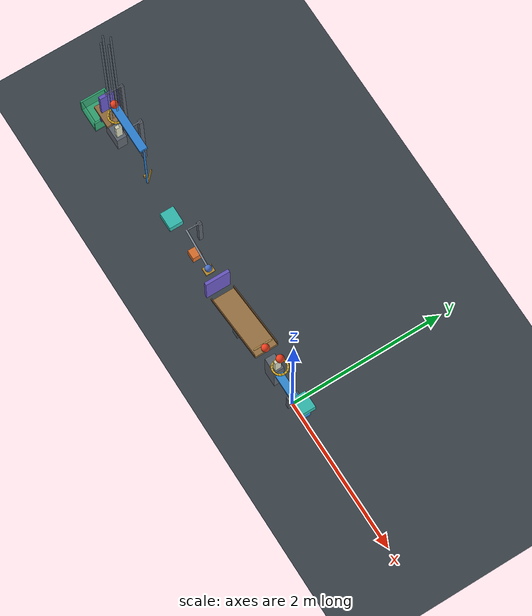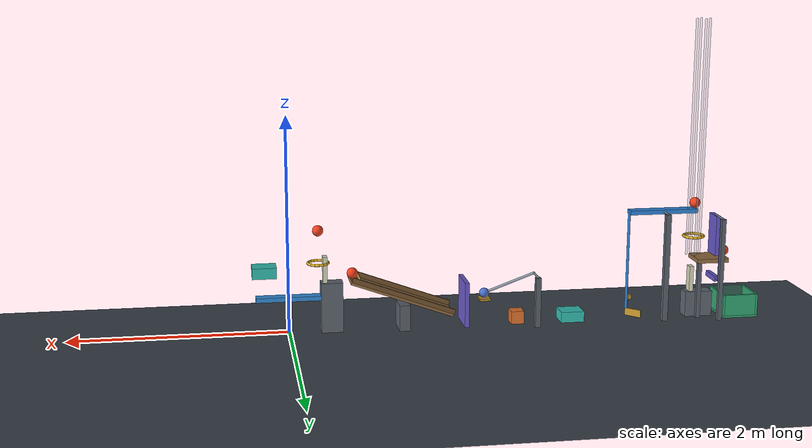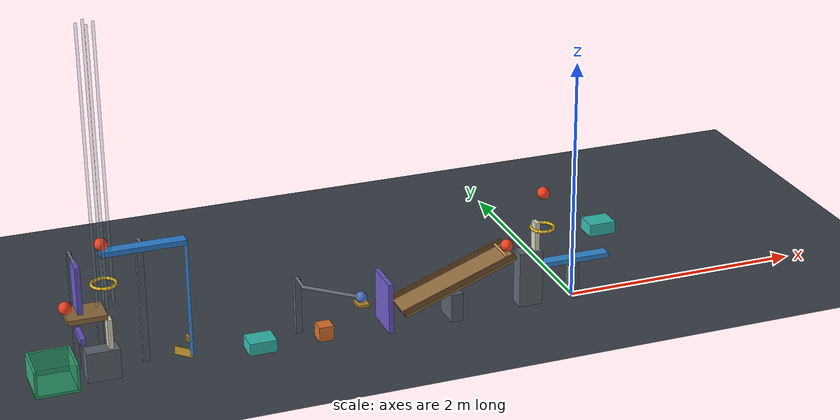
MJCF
<mujoco model="passive_chain_reaction">
  <compiler angle="degree" autolimits="true" inertiafromgeom="true"/>
  <option timestep="0.002" gravity="0 0 -9.81" integrator="implicitfast" solver="Newton" iterations="100" cone="elliptic"/>
  <size njmax="3000" nconmax="1000"/>
  <statistic center="-2 0 0.8" extent="5"/>
  <visual>
    <headlight ambient="0.35 0.35 0.35" diffuse="0.65 0.65 0.65" specular="0.2 0.2 0.2"/>
  </visual>

  <!-- Positive-format solref approximates e=0.04 with damping ratio 0.716.
       All initial generalized velocities are zero.
       Auxiliary fixtures supply passive releases and stored spring energy. -->

  <worldbody>
    <light name="main_light" pos="-2 -3 5" dir="0 0.5 -1" diffuse="0.8 0.8 0.8"/>
    <camera name="overview" pos="-2 -6 3.4" xyaxes="1 0 0 0 0.40 0.916515"/>
    <geom name="floor" type="plane" size="10 5 0.1" friction="0.72 0.005 0.0001" solref="0.006 0.716" solimp="0.95 0.99 0.001" rgba="0.23 0.26 0.29 1"/>
    <site name="block1_spring_anchor" pos="-8 0 0.060001" size="0.003" rgba="0 0 0 0"/>

    <!-- Ball1: center-to-ring drop 0.30 m; ring-to-impact-center drop 0.25 m. -->
    <body name="ball1" pos="-0.27 0 0.945">
      <freejoint name="ball1_free"/>
      <geom name="ball1_geom" type="sphere" size="0.05" mass="0.20" friction="0.72 0.005 0.0001" solref="0.006 0.716" solimp="0.95 0.99 0.001" rgba="0.95 0.25 0.12 1"/>
    </body>

    <!-- Sixteen capsules give a nominal 0.16 m minimum clear diameter. -->
    <body name="ring1" pos="-0.27 0 0.645">
      <geom name="ring1_01" type="capsule" fromto="0.0938032 0 0 0.0866659 0.0358977 0" size="0.012" friction="0.72 0.005 0.0001" solref="0.006 0.716" rgba="0.9 0.72 0.15 1"/>
      <geom name="ring1_02" type="capsule" fromto="0.0866659 0.0358977 0 0.066329 0.066329 0" size="0.012" friction="0.72 0.005 0.0001" solref="0.006 0.716" rgba="0.9 0.72 0.15 1"/>
      <geom name="ring1_03" type="capsule" fromto="0.066329 0.066329 0 0.0358977 0.0866659 0" size="0.012" friction="0.72 0.005 0.0001" solref="0.006 0.716" rgba="0.9 0.72 0.15 1"/>
      <geom name="ring1_04" type="capsule" fromto="0.0358977 0.0866659 0 0 0.0938032 0" size="0.012" friction="0.72 0.005 0.0001" solref="0.006 0.716" rgba="0.9 0.72 0.15 1"/>
      <geom name="ring1_05" type="capsule" fromto="0 0.0938032 0 -0.0358977 0.0866659 0" size="0.012" friction="0.72 0.005 0.0001" solref="0.006 0.716" rgba="0.9 0.72 0.15 1"/>
      <geom name="ring1_06" type="capsule" fromto="-0.0358977 0.0866659 0 -0.066329 0.066329 0" size="0.012" friction="0.72 0.005 0.0001" solref="0.006 0.716" rgba="0.9 0.72 0.15 1"/>
      <geom name="ring1_07" type="capsule" fromto="-0.066329 0.066329 0 -0.0866659 0.0358977 0" size="0.012" friction="0.72 0.005 0.0001" solref="0.006 0.716" rgba="0.9 0.72 0.15 1"/>
      <geom name="ring1_08" type="capsule" fromto="-0.0866659 0.0358977 0 -0.0938032 0 0" size="0.012" friction="0.72 0.005 0.0001" solref="0.006 0.716" rgba="0.9 0.72 0.15 1"/>
      <geom name="ring1_09" type="capsule" fromto="-0.0938032 0 0 -0.0866659 -0.0358977 0" size="0.012" friction="0.72 0.005 0.0001" solref="0.006 0.716" rgba="0.9 0.72 0.15 1"/>
      <geom name="ring1_10" type="capsule" fromto="-0.0866659 -0.0358977 0 -0.066329 -0.066329 0" size="0.012" friction="0.72 0.005 0.0001" solref="0.006 0.716" rgba="0.9 0.72 0.15 1"/>
      <geom name="ring1_11" type="capsule" fromto="-0.066329 -0.066329 0 -0.0358977 -0.0866659 0" size="0.012" friction="0.72 0.005 0.0001" solref="0.006 0.716" rgba="0.9 0.72 0.15 1"/>
      <geom name="ring1_12" type="capsule" fromto="-0.0358977 -0.0866659 0 0 -0.0938032 0" size="0.012" friction="0.72 0.005 0.0001" solref="0.006 0.716" rgba="0.9 0.72 0.15 1"/>
      <geom name="ring1_13" type="capsule" fromto="0 -0.0938032 0 0.0358977 -0.0866659 0" size="0.012" friction="0.72 0.005 0.0001" solref="0.006 0.716" rgba="0.9 0.72 0.15 1"/>
      <geom name="ring1_14" type="capsule" fromto="0.0358977 -0.0866659 0 0.066329 -0.066329 0" size="0.012" friction="0.72 0.005 0.0001" solref="0.006 0.716" rgba="0.9 0.72 0.15 1"/>
      <geom name="ring1_15" type="capsule" fromto="0.066329 -0.066329 0 0.0866659 -0.0358977 0" size="0.012" friction="0.72 0.005 0.0001" solref="0.006 0.716" rgba="0.9 0.72 0.15 1"/>
      <geom name="ring1_16" type="capsule" fromto="0.0866659 -0.0358977 0 0.0938032 0 0" size="0.012" friction="0.72 0.005 0.0001" solref="0.006 0.716" rgba="0.9 0.72 0.15 1"/>
    </body>

    <body name="lever1" pos="0 0 0.325">
      <joint name="lever1_hinge" type="hinge" axis="0 -1 0" range="0 45" damping="0.04" solreflimit="0.004 1" solimplimit="0.99 0.999 0.001"/>
      <geom name="lever1_beam" type="box" size="0.30 0.05 0.02" mass="0.50" friction="0.72 0.005 0.0001" solref="0.006 0.716" solimp="0.95 0.99 0.001" rgba="0.2 0.55 0.85 1"/>
    </body>

    <body name="lever1_mount" pos="0 0 0.1525">
      <geom name="lever1_mount_post" type="box" size="0.025 0.075 0.1525" friction="0.72 0.005 0.0001" solref="0.006 0.716" rgba="0.35 0.38 0.42 1"/>
    </body>

    <!-- The rising lever face drives cart1 along -x.
         Its first domino contact occurs at slide displacement 0.42 m. -->
    <body name="cart1" pos="0.22 0 0.585">
      <joint name="cart1_slide" type="slide" axis="-1 0 0" range="0 0.60" damping="0.20" solreflimit="0.004 1" solimplimit="0.99 0.999 0.001"/>
      <geom name="cart1_geom" type="box" size="0.11 0.09 0.05" mass="0.50" friction="0.72 0.005 0.0001" solref="0.006 0.716" solimp="0.95 0.99 0.001" rgba="0.2 0.75 0.7 1"/>
    </body>

    <body name="domino1" pos="-0.33 0 0.585">
      <freejoint name="domino1_free"/>
      <geom name="domino1_geom" type="box" size="0.02 0.04 0.12" mass="0.25" friction="0.72 0.005 0.0001" solref="0.006 0.716" solimp="0.95 0.99 0.001" rgba="0.85 0.85 0.74 1"/>
    </body>

    <body name="domino1_support" pos="-0.39 0 0.2325">
      <geom name="domino1_support_geom" type="box" size="0.10 0.065 0.2325" friction="0.72 0.005 0.0001" solref="0.006 0.716" rgba="0.37 0.40 0.44 1"/>
    </body>

    <body name="ball2" pos="-0.58 0 0.53795">
      <freejoint name="ball2_free"/>
      <geom name="ball2_geom" type="sphere" size="0.05" mass="0.20" friction="0.72 0.005 0.0001" solref="0.006 0.716" solimp="0.95 0.99 0.001" rgba="0.95 0.25 0.12 1"/>
    </body>

    <!-- Ramp top endpoints: (-0.56,0,0.492020) and
         (-1.499693,0,0.15). The transverse lip retains ball2 until struck. -->
    <body name="ramp1" pos="-1.025571 0 0.309264" quat="0.984807753 0 -0.173648178 0">
      <geom name="ramp1_surface" type="box" size="0.50 0.15 0.0125" friction="0.72 0.005 0.0001" solref="0.006 0.716" solimp="0.95 0.99 0.001" rgba="0.58 0.43 0.25 1"/>
      <geom name="ramp1_side_positive" type="box" pos="0 0.15 0.035" size="0.50 0.006 0.0225" friction="0.72 0.005 0.0001" solref="0.006 0.716" rgba="0.45 0.32 0.18 1"/>
      <geom name="ramp1_side_negative" type="box" pos="0 -0.15 0.035" size="0.50 0.006 0.0225" friction="0.72 0.005 0.0001" solref="0.006 0.716" rgba="0.45 0.32 0.18 1"/>
      <geom name="ramp1_retaining_lip" type="capsule" fromto="0.43498 -0.11 0.05217 0.43498 0.11 0.05217" size="0.011" friction="0.72 0.005 0.0001" solref="0.006 0.716" rgba="0.75 0.58 0.31 1"/>
    </body>

    <body name="ramp1_support" pos="-1.05 0 0.12">
      <geom name="ramp1_support_geom" type="box" size="0.05 0.12 0.12" friction="0.72 0.005 0.0001" solref="0.006 0.716" rgba="0.35 0.38 0.42 1"/>
    </body>

    <!-- Door face is 0.10 m beyond the low ramp edge. -->
    <body name="door1" pos="-1.619693 0 0.02">
      <joint name="door1_hinge" type="hinge" axis="0 -1 0" range="0 70" damping="0.04" solreflimit="0.004 1" solimplimit="0.99 0.999 0.001"/>
      <geom name="door1_panel" type="box" pos="0 0 0.21" size="0.02 0.16 0.21" mass="0.45" friction="0.72 0.005 0.0001" solref="0.006 0.716" solimp="0.95 0.99 0.001" rgba="0.42 0.35 0.78 1"/>
    </body>

    <!-- This retractable support holds the inclined pendulum at rest.
         The falling door pushes it out and then contacts the pendulum. -->
    <body name="pendulum1_catch" pos="-1.810154 0 0.243990">
      <joint name="pendulum1_catch_slide" type="slide" axis="-1 0 0" range="0 0.14" damping="0.20" solreflimit="0.004 1" solimplimit="0.99 0.999 0.001"/>
      <geom name="pendulum1_catch_geom" type="box" size="0.05 0.06 0.01" mass="0.025" friction="0.72 0.005 0.0001" solref="0.006 0.716" solimp="0.95 0.99 0.001" rgba="0.72 0.55 0.18 1"/>
    </body>

    <body name="pendulum1" pos="-2.28 0 0.47">
      <joint name="pendulum1_hinge" type="hinge" axis="0 1 0" range="0 38" damping="0.04" stiffness="1.5" springref="38" solreflimit="0.004 1" solimplimit="0.99 0.999 0.001"/>
      <geom name="pendulum1_rod" type="capsule" fromto="0 0 0 0.437 0 -0.159058" size="0.012" mass="0.035" friction="0.72 0.005 0.0001" solref="0.006 0.716" rgba="0.6 0.64 0.7 1"/>
      <geom name="pendulum1_bob" type="sphere" pos="0.469846 0 -0.171010" size="0.045" mass="0.315" friction="0.72 0.005 0.0001" solref="0.006 0.716" solimp="0.95 0.99 0.001" rgba="0.3 0.45 0.8 1"/>
    </body>

    <body name="pendulum1_mount" pos="-2.28 0.17 0.235">
      <geom name="pendulum1_mount_post" type="box" size="0.025 0.025 0.235" friction="0.72 0.005 0.0001" solref="0.006 0.716" rgba="0.35 0.38 0.42 1"/>
      <geom name="pendulum1_mount_axle" type="capsule" fromto="0 -0.17 0.235 0 0 0.235" size="0.009" friction="0.72 0.005 0.0001" solref="0.006 0.716" rgba="0.5 0.53 0.58 1"/>
    </body>

    <!-- A weak horizontal spring biases block1 below its static-friction
         threshold. It does not start the block without the pendulum impact. -->
    <body name="block1" pos="-2.120040 0 0.060001">
      <freejoint name="block1_free"/>
      <geom name="block1_geom" type="box" size="0.06 0.06 0.06" mass="0.35" friction="0.72 0.005 0.0001" solref="0.006 0.716" solimp="0.95 0.99 0.001" rgba="0.88 0.45 0.18 1"/>
      <site name="block1_spring_attachment" pos="0 0 0" size="0.003" rgba="0 0 0 0"/>
    </body>

    <!-- Initial face separation from block1 is 0.35 m. -->
    <body name="cart2" pos="-2.640040 0 0.0505">
      <joint name="cart2_slide" type="slide" axis="-1 0 0" range="0 0.65" damping="0.20" solreflimit="0.004 1" solimplimit="0.99 0.999 0.001"/>
      <geom name="cart2_geom" type="box" size="0.11 0.09 0.05" mass="0.50" friction="0.72 0.005 0.0001" solref="0.006 0.716" solimp="0.95 0.99 0.001" rgba="0.2 0.75 0.7 1"/>
    </body>

    <!-- The elevated seesaw has a lightweight left-end striking extension.
         Cart2 reaches that extension after 0.42 m of slide travel. -->
    <body name="seesaw1" pos="-3.507040 0 1.02">
      <joint name="seesaw1_hinge" type="hinge" axis="0 1 0" range="0 42" damping="0.04" stiffness="3.0" springref="42" solreflimit="0.004 1" solimplimit="0.99 0.999 0.001"/>
      <geom name="seesaw1_beam" type="box" size="0.325 0.05 0.02" mass="0.55" friction="0.72 0.005 0.0001" solref="0.006 0.716" solimp="0.95 0.99 0.001" rgba="0.18 0.52 0.85 1"/>
      <geom name="seesaw1_left_end_extension" type="capsule" fromto="0.325 0 -0.01 0.325 0 -0.965" size="0.012" mass="0" friction="0.72 0.005 0.0001" solref="0.006 0.716" solimp="0.95 0.99 0.001" rgba="0.18 0.52 0.85 1"/>
    </body>

    <!-- Transverse latch: seesaw preload cannot withdraw it along y.
         Cart2 presses the diagonal cam to release the spring-loaded beam. -->
    <body name="seesaw1_latch" pos="-3.208040 0 0.20">
      <joint name="seesaw1_latch_slide" type="slide" axis="0 -1 0" range="0 0.12" damping="0.20" stiffness="0.5" springref="0" solreflimit="0.004 1" solimplimit="0.99 0.999 0.001"/>
      <geom name="seesaw1_latch_block" type="box" size="0.012 0.025 0.022" mass="0.015" friction="0.72 0.005 0.0001" solref="0.006 0.716" solimp="0.95 0.99 0.001" rgba="0.76 0.57 0.16 1"/>
      <geom name="seesaw1_latch_cam" type="box" pos="-0.023 0.06 -0.14" quat="0.923879533 0 0 0.382683432" size="0.005 0.08 0.035" mass="0.010" friction="0.72 0.005 0.0001" solref="0.006 0.716" solimp="0.95 0.99 0.001" rgba="0.76 0.57 0.16 1"/>
    </body>

    <body name="seesaw1_mount" pos="-3.507040 0.15 0.51">
      <geom name="seesaw1_mount_post" type="box" size="0.025 0.025 0.51" friction="0.72 0.005 0.0001" solref="0.006 0.716" rgba="0.35 0.38 0.42 1"/>
      <geom name="seesaw1_mount_axle" type="capsule" fromto="0 -0.15 0.51 0 0 0.51" size="0.009" friction="0.72 0.005 0.0001" solref="0.006 0.716" rgba="0.5 0.53 0.58 1"/>
    </body>

    <body name="ball3" pos="-3.817040 0 1.09">
      <freejoint name="ball3_free"/>
      <geom name="ball3_geom" type="sphere" size="0.05" mass="0.20" contype="5" conaffinity="3" friction="0.72 0.005 0.0001" solref="0.006 0.716" solimp="0.95 0.99 0.001" rgba="0.95 0.25 0.12 1"/>
    </body>

    <!-- Ball-only contact filtering represents a slotted vertical launch
         guide: the lever can sweep through it, while ball3 stays aligned. -->
    <body name="ball3_guide" pos="-3.817040 0 0">
      <geom name="ball3_guide_positive_x" type="capsule" fromto="0.062 0 0.60 0.062 0 2.80" size="0.011" contype="2" conaffinity="4" friction="0.72 0.005 0.0001" solref="0.006 0.716" rgba="0.55 0.65 0.72 0.3"/>
      <geom name="ball3_guide_negative_x" type="capsule" fromto="-0.062 0 0.60 -0.062 0 2.80" size="0.011" contype="2" conaffinity="4" friction="0.72 0.005 0.0001" solref="0.006 0.716" rgba="0.55 0.65 0.72 0.3"/>
      <geom name="ball3_guide_positive_y" type="capsule" fromto="0 0.062 0.60 0 0.062 2.80" size="0.011" contype="2" conaffinity="4" friction="0.72 0.005 0.0001" solref="0.006 0.716" rgba="0.55 0.65 0.72 0.3"/>
      <geom name="ball3_guide_negative_y" type="capsule" fromto="0 -0.062 0.60 0 -0.062 2.80" size="0.011" contype="2" conaffinity="4" friction="0.72 0.005 0.0001" solref="0.006 0.716" rgba="0.55 0.65 0.72 0.3"/>
    </body>

    <body name="ring2" pos="-3.817040 0 0.77">
      <geom name="ring2_01" type="capsule" fromto="0.0938032 0 0 0.0866659 0.0358977 0" size="0.012" friction="0.72 0.005 0.0001" solref="0.006 0.716" rgba="0.9 0.72 0.15 1"/>
      <geom name="ring2_02" type="capsule" fromto="0.0866659 0.0358977 0 0.066329 0.066329 0" size="0.012" friction="0.72 0.005 0.0001" solref="0.006 0.716" rgba="0.9 0.72 0.15 1"/>
      <geom name="ring2_03" type="capsule" fromto="0.066329 0.066329 0 0.0358977 0.0866659 0" size="0.012" friction="0.72 0.005 0.0001" solref="0.006 0.716" rgba="0.9 0.72 0.15 1"/>
      <geom name="ring2_04" type="capsule" fromto="0.0358977 0.0866659 0 0 0.0938032 0" size="0.012" friction="0.72 0.005 0.0001" solref="0.006 0.716" rgba="0.9 0.72 0.15 1"/>
      <geom name="ring2_05" type="capsule" fromto="0 0.0938032 0 -0.0358977 0.0866659 0" size="0.012" friction="0.72 0.005 0.0001" solref="0.006 0.716" rgba="0.9 0.72 0.15 1"/>
      <geom name="ring2_06" type="capsule" fromto="-0.0358977 0.0866659 0 -0.066329 0.066329 0" size="0.012" friction="0.72 0.005 0.0001" solref="0.006 0.716" rgba="0.9 0.72 0.15 1"/>
      <geom name="ring2_07" type="capsule" fromto="-0.066329 0.066329 0 -0.0866659 0.0358977 0" size="0.012" friction="0.72 0.005 0.0001" solref="0.006 0.716" rgba="0.9 0.72 0.15 1"/>
      <geom name="ring2_08" type="capsule" fromto="-0.0866659 0.0358977 0 -0.0938032 0 0" size="0.012" friction="0.72 0.005 0.0001" solref="0.006 0.716" rgba="0.9 0.72 0.15 1"/>
      <geom name="ring2_09" type="capsule" fromto="-0.0938032 0 0 -0.0866659 -0.0358977 0" size="0.012" friction="0.72 0.005 0.0001" solref="0.006 0.716" rgba="0.9 0.72 0.15 1"/>
      <geom name="ring2_10" type="capsule" fromto="-0.0866659 -0.0358977 0 -0.066329 -0.066329 0" size="0.012" friction="0.72 0.005 0.0001" solref="0.006 0.716" rgba="0.9 0.72 0.15 1"/>
      <geom name="ring2_11" type="capsule" fromto="-0.066329 -0.066329 0 -0.0358977 -0.0866659 0" size="0.012" friction="0.72 0.005 0.0001" solref="0.006 0.716" rgba="0.9 0.72 0.15 1"/>
      <geom name="ring2_12" type="capsule" fromto="-0.0358977 -0.0866659 0 0 -0.0938032 0" size="0.012" friction="0.72 0.005 0.0001" solref="0.006 0.716" rgba="0.9 0.72 0.15 1"/>
      <geom name="ring2_13" type="capsule" fromto="0 -0.0938032 0 0.0358977 -0.0866659 0" size="0.012" friction="0.72 0.005 0.0001" solref="0.006 0.716" rgba="0.9 0.72 0.15 1"/>
      <geom name="ring2_14" type="capsule" fromto="0.0358977 -0.0866659 0 0.066329 -0.066329 0" size="0.012" friction="0.72 0.005 0.0001" solref="0.006 0.716" rgba="0.9 0.72 0.15 1"/>
      <geom name="ring2_15" type="capsule" fromto="0.066329 -0.066329 0 0.0866659 -0.0358977 0" size="0.012" friction="0.72 0.005 0.0001" solref="0.006 0.716" rgba="0.9 0.72 0.15 1"/>
      <geom name="ring2_16" type="capsule" fromto="0.0866659 -0.0358977 0 0.0938032 0 0" size="0.012" friction="0.72 0.005 0.0001" solref="0.006 0.716" rgba="0.9 0.72 0.15 1"/>
    </body>

    <!-- The falling ball strikes 15 mm left of domino2's center.
         Its impact-center height is 0.53 m, 0.24 m below ring2. -->
    <body name="domino2" pos="-3.802040 0 0.36">
      <freejoint name="domino2_free"/>
      <geom name="domino2_geom" type="box" size="0.02 0.04 0.12" mass="0.25" friction="0.72 0.005 0.0001" solref="0.006 0.716" solimp="0.95 0.99 0.001" rgba="0.85 0.85 0.74 1"/>
    </body>

    <body name="domino2_support" pos="-3.872040 0 0.12">
      <geom name="domino2_support_geom" type="box" size="0.13 0.065 0.12" friction="0.72 0.005 0.0001" solref="0.006 0.716" rgba="0.37 0.40 0.44 1"/>
    </body>

    <!-- Top-hinged flap clears the shelf as it swings.
         The lower crank is part of flap1 and presents a face 0.18 m
         beyond domino2's left face. Massless crank geoms preserve 0.28 kg. -->
    <body name="flap1" pos="-4.022040 0 0.97">
      <joint name="flap1_hinge" type="hinge" axis="0 1 0" range="0 60" damping="0.04" solreflimit="0.004 1" solimplimit="0.99 0.999 0.001"/>
      <geom name="flap1_panel" type="box" pos="0 0 -0.19" size="0.02 0.09 0.19" mass="0.28" friction="0.72 0.005 0.0001" solref="0.006 0.716" solimp="0.95 0.99 0.001" rgba="0.4 0.34 0.78 1"/>
      <geom name="flap1_lower_striker" type="box" pos="0 0 -0.60" size="0.02 0.11 0.025" mass="0" friction="0.72 0.005 0.0001" solref="0.006 0.716" solimp="0.95 0.99 0.001" rgba="0.4 0.34 0.78 1"/>
      <geom name="flap1_outer_crank" type="capsule" fromto="0 0.15 0 0 0.15 -0.60" size="0.008" mass="0" friction="0.72 0.005 0.0001" solref="0.006 0.716" rgba="0.4 0.34 0.78 1"/>
      <geom name="flap1_crank_crossbar" type="capsule" fromto="0 0 -0.60 0 0.15 -0.60" size="0.008" mass="0" friction="0.72 0.005 0.0001" solref="0.006 0.716" rgba="0.4 0.34 0.78 1"/>
    </body>

    <body name="flap1_mount" pos="-4.022040 0.21 0.485">
      <geom name="flap1_mount_post" type="box" size="0.02 0.02 0.485" friction="0.72 0.005 0.0001" solref="0.006 0.716" rgba="0.35 0.38 0.42 1"/>
      <geom name="flap1_mount_axle" type="capsule" fromto="0 -0.21 0.485 0 0 0.485" size="0.008" friction="0.72 0.005 0.0001" solref="0.006 0.716" rgba="0.5 0.53 0.58 1"/>
    </body>

    <body name="ball4" pos="-4.117040 0 0.62">
      <freejoint name="ball4_free"/>
      <geom name="ball4_geom" type="sphere" size="0.05" mass="0.20" friction="0.72 0.005 0.0001" solref="0.006 0.716" solimp="0.95 0.99 0.001" rgba="0.95 0.25 0.12 1"/>
    </body>

    <!-- Shelf top is 0.55 m above the cup's inner bottom. -->
    <body name="shelf1" pos="-3.977040 0 0.55">
      <geom name="shelf1_surface" type="box" size="0.15 0.125 0.02" friction="0.72 0.005 0.0001" solref="0.006 0.716" solimp="0.95 0.99 0.001" rgba="0.58 0.43 0.25 1"/>
    </body>

    <body name="shelf1_support" pos="-3.852040 0.095 0.265">
      <geom name="shelf1_support_post" type="box" size="0.02 0.02 0.265" friction="0.72 0.005 0.0001" solref="0.006 0.716" rgba="0.35 0.38 0.42 1"/>
    </body>

    <!-- Inner footprint 0.30 x 0.30 m; wall height 0.20 m;
         wall thickness 0.02 m. -->
    <body name="cup1" pos="-4.247040 0 0">
      <geom name="cup1_bottom" type="box" pos="0 0 0.01" size="0.17 0.17 0.01" friction="0.72 0.005 0.0001" solref="0.006 0.716" solimp="0.95 0.99 0.001" rgba="0.2 0.65 0.45 1"/>
      <geom name="cup1_wall_positive_x" type="box" pos="0.16 0 0.12" size="0.01 0.17 0.10" friction="0.72 0.005 0.0001" solref="0.006 0.716" solimp="0.95 0.99 0.001" rgba="0.2 0.65 0.45 1"/>
      <geom name="cup1_wall_negative_x" type="box" pos="-0.16 0 0.12" size="0.01 0.17 0.10" friction="0.72 0.005 0.0001" solref="0.006 0.716" solimp="0.95 0.99 0.001" rgba="0.2 0.65 0.45 1"/>
      <geom name="cup1_wall_positive_y" type="box" pos="0 0.16 0.12" size="0.15 0.01 0.10" friction="0.72 0.005 0.0001" solref="0.006 0.716" solimp="0.95 0.99 0.001" rgba="0.2 0.65 0.45 1"/>
      <geom name="cup1_wall_negative_y" type="box" pos="0 -0.16 0.12" size="0.15 0.01 0.10" friction="0.72 0.005 0.0001" solref="0.006 0.716" solimp="0.95 0.99 0.001" rgba="0.2 0.65 0.45 0.35"/>
    </body>
  </worldbody>

  <tendon>
    <spatial name="block1_passive_bias" stiffness="0.40" springlength="0" damping="0" width="0.002" rgba="0 0 0 0">
      <site site="block1_spring_anchor"/>
      <site site="block1_spring_attachment"/>
    </spatial>
  </tendon>

  <keyframe>
    <!-- Omitted qpos uses the reference pose; omitted qvel is all zeros. -->
    <key name="start"/>
  </keyframe>
</mujoco>
